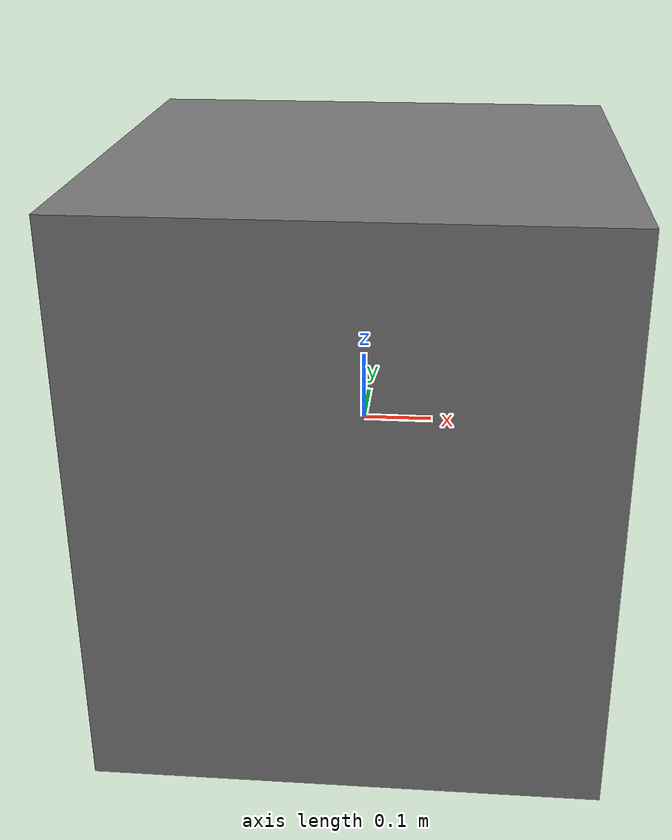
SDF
<?xml version="1.0"?>
<sdf version="1.10">
  <model name="smart_obstacle">

    <static>true</static>

    <link name="obstacle_link">

      <collision name="collision">
        <geometry>
          <box>
            <size>0.7 0.7 0.8</size>
          </box>
        </geometry>
      </collision>

      <visual name="visual">
        <geometry>
          <box>
            <size>0.7 0.7 0.8</size>
          </box>
        </geometry>
        <material>
          <ambient>0.35 0.35 0.35 1</ambient>
          <diffuse>0.45 0.45 0.45 1</diffuse>
        </material>
      </visual>

      <inertial>
        <mass>8.0</mass>
        <inertia>
          <ixx>1</ixx>
          <iyy>1</iyy>
          <izz>1</izz>
          <ixy>0</ixy>
          <ixz>0</ixz>
          <iyz>0</iyz>
        </inertia>
      </inertial>

    </link>

  </model>
</sdf>
